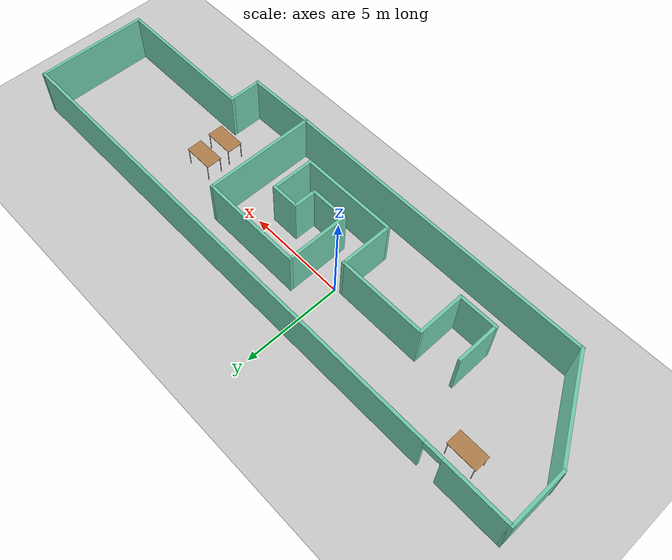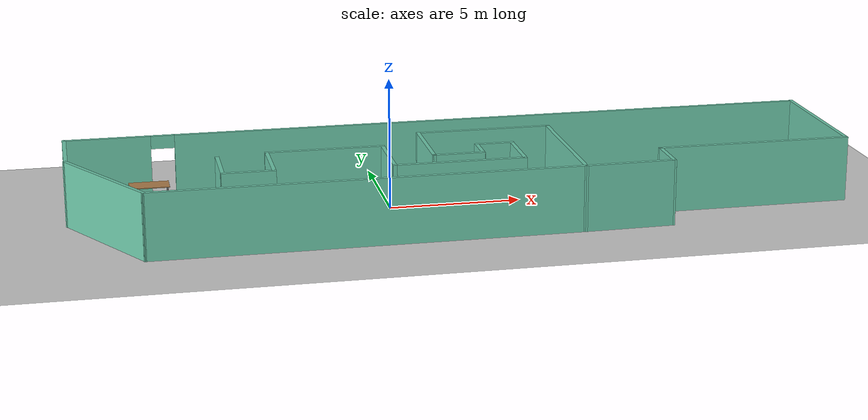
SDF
<sdf version="1.6">
 <world name="default">
  <light name="sun" type="directional">
   <pose>0 0 10 0 -0 0</pose>
   <diffuse>0.8 0.8 0.8 1</diffuse>
   <specular>0.2 0.2 0.2 1</specular>
   <attenuation>
    <range>1000</range>
    <constant>0.9</constant>
    <linear>0.01</linear>
    <quadratic>0.001</quadratic>
   </attenuation>
   <direction>-0.5 0.1 -0.9</direction>
  </light>
  <model name="ground_plane">
   <static>1</static>
   <link name="link">
    <collision name="collision">
     <geometry><plane><normal>0 0 1</normal><size>100 100</size></plane></geometry>
     <surface>
      <contact><collide_bitmask>65535</collide_bitmask></contact>
      <friction><ode><mu>100</mu><mu2>50</mu2></ode></friction>
     </surface>
    </collision>
    <visual name="visual">
     <cast_shadows>0</cast_shadows>
     <geometry><plane><normal>0 0 1</normal><size>100 100</size></plane></geometry>
     <material>
      <script><uri>file://media/materials/scripts/gazebo.material</uri><name>Gazebo/Grey</name></script>
     </material>
    </visual>
   </link>
  </model>
  <gravity>0 0 -9.8</gravity>
  <magnetic_field>6e-06 2.3e-05 -4.2e-05</magnetic_field>
  <atmosphere type="adiabatic"/>
  <physics name="default_physics" default="0" type="ode">
   <max_step_size>0.001</max_step_size>
   <real_time_factor>1</real_time_factor>
   <real_time_update_rate>1000</real_time_update_rate>
  </physics>
  <scene><ambient>0.4 0.4 0.4 1</ambient><background>0.7 0.7 0.7 1</background><shadows>1</shadows></scene>
  <spherical_coordinates>
   <surface_model>EARTH_WGS84</surface_model>
   <latitude_deg>0</latitude_deg>
   <longitude_deg>0</longitude_deg>
   <elevation>0</elevation>
   <heading_deg>0</heading_deg>
  </spherical_coordinates>
  <model name="home2">
   <pose>2.58786 -0.613583 0 0 -0 0</pose>
   <link name="Wall_0">
    <collision name="Wall_0_Collision">
     <geometry><box><size>16 0.15 2.5</size></box></geometry>
     <pose>0 0 1.25 0 -0 0</pose>
    </collision>
    <visual name="Wall_0_Visual">
     <pose>0 0 1.25 0 -0 0</pose>
     <geometry><box><size>16 0.15 2.5</size></box></geometry>
     <material>
      <script><uri>file://media/materials/scripts/gazebo.material</uri><name>Gazebo/Grey</name></script>
      <ambient>0.435294 0.796078 0.67451 1</ambient>
     </material>
     <meta><layer>0</layer></meta>
    </visual>
    <pose>-4.06127 -3.61964 0 0 -0 3.14159</pose>
   </link>
   <link name="Wall_1">
    <collision name="Wall_1_Collision">
     <geometry><box><size>5.25 0.15 2.5</size></box></geometry>
     <pose>0 0 1.25 0 -0 0</pose>
    </collision>
    <visual name="Wall_1_Visual">
     <pose>0 0 1.25 0 -0 0</pose>
     <geometry><box><size>5.25 0.15 2.5</size></box></geometry>
     <material>
      <script><uri>file://media/materials/scripts/gazebo.material</uri><name>Gazebo/Grey</name></script>
      <ambient>0.435294 0.796078 0.67451 1</ambient>
     </material>
     <meta><layer>0</layer></meta>
    </visual>
    <pose>-13.2613 -1.41127 0 0 -0 2.0944</pose>
   </link>
   <link name="Wall_10">
    <collision name="Wall_10_Collision">
     <geometry><box><size>3.25 0.15 2.5</size></box></geometry>
     <pose>0 0 1.25 0 -0 0</pose>
    </collision>
    <visual name="Wall_10_Visual">
     <pose>0 0 1.25 0 -0 0</pose>
     <geometry><box><size>3.25 0.15 2.5</size></box></geometry>
     <material>
      <script><uri>file://media/materials/scripts/gazebo.material</uri><name>Gazebo/Grey</name></script>
      <ambient>0.435294 0.796078 0.67451 1</ambient>
     </material>
     <meta><layer>0</layer></meta>
    </visual>
    <pose>-1.23627 0.430361 0 0 0 -1.5708</pose>
   </link>
   <link name="Wall_11">
    <collision name="Wall_11_Collision">
     <geometry><box><size>2 0.15 2.5</size></box></geometry>
     <pose>0 0 1.25 0 -0 0</pose>
    </collision>
    <visual name="Wall_11_Visual">
     <pose>0 0 1.25 0 -0 0</pose>
     <geometry><box><size>2 0.15 2.5</size></box></geometry>
     <material>
      <script><uri>file://media/materials/scripts/gazebo.material</uri><name>Gazebo/Grey</name></script>
      <ambient>0.435294 0.796078 0.67451 1</ambient>
     </material>
     <meta><layer>0</layer></meta>
    </visual>
    <pose>-0.311274 -1.11964 0 0 -0 0</pose>
   </link>
   <link name="Wall_12">
    <collision name="Wall_12_Collision">
     <geometry><box><size>1.25 0.15 2.5</size></box></geometry>
     <pose>0 0 1.25 0 -0 0</pose>
    </collision>
    <visual name="Wall_12_Visual">
     <pose>0 0 1.25 0 -0 0</pose>
     <geometry><box><size>1.25 0.15 2.5</size></box></geometry>
     <material>
      <script><uri>file://media/materials/scripts/gazebo.material</uri><name>Gazebo/Grey</name></script>
      <ambient>0.435294 0.796078 0.67451 1</ambient>
     </material>
     <meta><layer>0</layer></meta>
    </visual>
    <pose>0.613726 -0.569639 0 0 -0 1.5708</pose>
   </link>
   <link name="Wall_13">
    <collision name="Wall_13_Collision">
     <geometry><box><size>1.5 0.15 2.5</size></box></geometry>
     <pose>0 0 1.25 0 -0 0</pose>
    </collision>
    <visual name="Wall_13_Visual">
     <pose>0 0 1.25 0 -0 0</pose>
     <geometry><box><size>1.5 0.15 2.5</size></box></geometry>
     <material>
      <script><uri>file://media/materials/scripts/gazebo.material</uri><name>Gazebo/Grey</name></script>
      <ambient>0.435294 0.796078 0.67451 1</ambient>
     </material>
     <meta><layer>0</layer></meta>
    </visual>
    <pose>1.28873 -0.019639 0 0 -0 0</pose>
   </link>
   <link name="Wall_14">
    <collision name="Wall_14_Collision">
     <geometry><box><size>2.25 0.15 2.5</size></box></geometry>
     <pose>0 0 1.25 0 -0 0</pose>
    </collision>
    <visual name="Wall_14_Visual">
     <pose>0 0 1.25 0 -0 0</pose>
     <geometry><box><size>2.25 0.15 2.5</size></box></geometry>
     <material>
      <script><uri>file://media/materials/scripts/gazebo.material</uri><name>Gazebo/Grey</name></script>
      <ambient>0.435294 0.796078 0.67451 1</ambient>
     </material>
     <meta><layer>0</layer></meta>
    </visual>
    <pose>1.96373 -1.06964 0 0 0 -1.5708</pose>
   </link>
   <link name="Wall_15">
    <collision name="Wall_15_Collision">
     <geometry><box><size>5 0.15 2.5</size></box></geometry>
     <pose>0 0 1.25 0 -0 0</pose>
    </collision>
    <visual name="Wall_15_Visual">
     <pose>0 0 1.25 0 -0 0</pose>
     <geometry><box><size>5 0.15 2.5</size></box></geometry>
     <material>
      <script><uri>file://media/materials/scripts/gazebo.material</uri><name>Gazebo/Grey</name></script>
      <ambient>0.435294 0.796078 0.67451 1</ambient>
     </material>
     <meta><layer>0</layer></meta>
    </visual>
    <pose>-0.461274 -2.11964 0 0 -0 3.14159</pose>
   </link>
   <link name="Wall_16">
    <collision name="Wall_16_Collision">
     <geometry><box><size>2.75 0.15 2.5</size></box></geometry>
     <pose>0 0 1.25 0 -0 0</pose>
    </collision>
    <visual name="Wall_16_Visual">
     <pose>0 0 1.25 0 -0 0</pose>
     <geometry><box><size>2.75 0.15 2.5</size></box></geometry>
     <material>
      <script><uri>file://media/materials/scripts/gazebo.material</uri><name>Gazebo/Grey</name></script>
      <ambient>0.435294 0.796078 0.67451 1</ambient>
     </material>
     <meta><layer>0</layer></meta>
    </visual>
    <pose>-2.88627 -0.819639 0 0 -0 1.5708</pose>
   </link>
   <link name="Wall_17">
    <collision name="Wall_17_Collision">
     <geometry><box><size>4.5 0.15 2.5</size></box></geometry>
     <pose>0 0 1.25 0 -0 0</pose>
    </collision>
    <visual name="Wall_17_Visual">
     <pose>0 0 1.25 0 -0 0</pose>
     <geometry><box><size>4.5 0.15 2.5</size></box></geometry>
     <material>
      <script><uri>file://media/materials/scripts/gazebo.material</uri><name>Gazebo/Grey</name></script>
      <ambient>0.435294 0.796078 0.67451 1</ambient>
     </material>
     <meta><layer>0</layer></meta>
    </visual>
    <pose>-5.06127 0.480361 0 0 -0 3.14159</pose>
   </link>
   <link name="Wall_18">
    <collision name="Wall_18_Collision">
     <geometry><box><size>2.5 0.15 2.5</size></box></geometry>
     <pose>0 0 1.25 0 -0 0</pose>
    </collision>
    <visual name="Wall_18_Visual">
     <pose>0 0 1.25 0 -0 0</pose>
     <geometry><box><size>2.5 0.15 2.5</size></box></geometry>
     <material>
      <script><uri>file://media/materials/scripts/gazebo.material</uri><name>Gazebo/Grey</name></script>
      <ambient>0.435294 0.796078 0.67451 1</ambient>
     </material>
     <meta><layer>0</layer></meta>
    </visual>
    <pose>-7.23627 -0.694639 0 0 0 -1.5708</pose>
   </link>
   <link name="Wall_19">
    <collision name="Wall_19_Collision">
     <geometry><box><size>2 0.15 2.5</size></box></geometry>
     <pose>0 0 1.25 0 -0 0</pose>
    </collision>
    <visual name="Wall_19_Visual">
     <pose>0 0 1.25 0 -0 0</pose>
     <geometry><box><size>2 0.15 2.5</size></box></geometry>
     <material>
      <script><uri>file://media/materials/scripts/gazebo.material</uri><name>Gazebo/Grey</name></script>
      <ambient>0.435294 0.796078 0.67451 1</ambient>
     </material>
     <meta><layer>0</layer></meta>
    </visual>
    <pose>-8.16127 -1.86964 0 0 -0 3.14159</pose>
   </link>
   <link name="Wall_2">
    <collision name="Wall_2_Collision">
     <geometry><box><size>3 0.15 2.5</size></box></geometry>
     <pose>0 0 1.25 0 -0 0</pose>
    </collision>
    <visual name="Wall_2_Visual">
     <pose>0 0 1.25 0 -0 0</pose>
     <geometry><box><size>3 0.15 2.5</size></box></geometry>
     <material>
      <script><uri>file://media/materials/scripts/gazebo.material</uri><name>Gazebo/Grey</name></script>
      <ambient>0.435294 0.796078 0.67451 1</ambient>
     </material>
     <meta><layer>0</layer></meta>
    </visual>
    <pose>-14.5363 2.22209 0 0 -0 1.5708</pose>
   </link>
   <link name="Wall_20">
    <collision name="Wall_20_Collision">
     <geometry><box><size>2.25 0.15 2.5</size></box></geometry>
     <pose>0 0 1.25 0 -0 0</pose>
    </collision>
    <visual name="Wall_20_Visual">
     <pose>0 0 1.25 0 -0 0</pose>
     <geometry><box><size>2.25 0.15 2.5</size></box></geometry>
     <material>
      <script><uri>file://media/materials/scripts/gazebo.material</uri><name>Gazebo/Grey</name></script>
      <ambient>0.435294 0.796078 0.67451 1</ambient>
     </material>
     <meta><layer>0</layer></meta>
    </visual>
    <pose>-9.08627 -0.819639 0 0 -0 1.5708</pose>
   </link>
   <link name="Wall_3">
    <pose>0.013726 3.64709 0 0 -0 0</pose>
    <visual name="Wall_3_Visual_0">
     <pose>-12.9695 0 1.25 0 -0 0</pose>
     <geometry><box><size>3.3111 0.15 2.5</size></box></geometry>
     <material>
      <script><uri>file://media/materials/scripts/gazebo.material</uri><name>Gazebo/Grey</name></script>
      <ambient>0.435294 0.796078 0.67451 1</ambient>
     </material>
     <meta><layer>0</layer></meta>
    </visual>
    <collision name="Wall_3_Collision_0">
     <geometry><box><size>3.3111 0.15 2.5</size></box></geometry>
     <pose>-12.9695 0 1.25 0 -0 0</pose>
    </collision>
    <visual name="Wall_3_Visual_1">
     <pose>2.10555 0 1.25 0 -0 0</pose>
     <geometry><box><size>25.0389 0.15 2.5</size></box></geometry>
     <material>
      <script><uri>file://media/materials/scripts/gazebo.material</uri><name>Gazebo/Grey</name></script>
      <ambient>0.435294 0.796078 0.67451 1</ambient>
     </material>
     <meta><layer>0</layer></meta>
    </visual>
    <collision name="Wall_3_Collision_1">
     <geometry><box><size>25.0389 0.15 2.5</size></box></geometry>
     <pose>2.10555 0 1.25 0 -0 0</pose>
    </collision>
    <visual name="Wall_3_Visual_2">
     <pose>-10.8639 0 2.25 0 -0 0</pose>
     <geometry><box><size>0.9 0.15 0.5</size></box></geometry>
     <material>
      <script><uri>file://media/materials/scripts/gazebo.material</uri><name>Gazebo/Grey</name></script>
      <ambient>0.435294 0.796078 0.67451 1</ambient>
     </material>
     <meta><layer>0</layer></meta>
    </visual>
    <collision name="Wall_3_Collision_2">
     <geometry><box><size>0.9 0.15 0.5</size></box></geometry>
     <pose>-10.8639 0 2.25 0 -0 0</pose>
    </collision>
   </link>
   <link name="Wall_4">
    <collision name="Wall_4_Collision">
     <geometry><box><size>5.75 0.15 2.5</size></box></geometry>
     <pose>0 0 1.25 0 -0 0</pose>
    </collision>
    <visual name="Wall_4_Visual">
     <pose>0 0 1.25 0 -0 0</pose>
     <geometry><box><size>5.75 0.15 2.5</size></box></geometry>
     <material>
      <script><uri>file://media/materials/scripts/gazebo.material</uri><name>Gazebo/Grey</name></script>
      <ambient>0.435294 0.796078 0.67451 1</ambient>
     </material>
     <meta><layer>0</layer></meta>
    </visual>
    <pose>14.5637 0.847091 0 0 0 -1.5708</pose>
   </link>
   <link name="Wall_5">
    <collision name="Wall_5_Collision">
     <geometry><box><size>7.5 0.15 2.5</size></box></geometry>
     <pose>0 0 1.25 0 -0 0</pose>
    </collision>
    <visual name="Wall_5_Visual">
     <pose>0 0 1.25 0 -0 0</pose>
     <geometry><box><size>7.5 0.15 2.5</size></box></geometry>
     <material>
      <script><uri>file://media/materials/scripts/gazebo.material</uri><name>Gazebo/Grey</name></script>
      <ambient>0.435294 0.796078 0.67451 1</ambient>
     </material>
     <meta><layer>0</layer></meta>
    </visual>
    <pose>10.8887 -1.95291 0 0 -0 3.14159</pose>
   </link>
   <link name="Wall_6">
    <collision name="Wall_6_Collision">
     <geometry><box><size>1.75 0.15 2.5</size></box></geometry>
     <pose>0 0 1.25 0 -0 0</pose>
    </collision>
    <visual name="Wall_6_Visual">
     <pose>0 0 1.25 0 -0 0</pose>
     <geometry><box><size>1.75 0.15 2.5</size></box></geometry>
     <material>
      <script><uri>file://media/materials/scripts/gazebo.material</uri><name>Gazebo/Grey</name></script>
      <ambient>0.435294 0.796078 0.67451 1</ambient>
     </material>
     <meta><layer>0</layer></meta>
    </visual>
    <pose>7.21373 -2.75291 0 0 0 -1.5708</pose>
   </link>
   <link name="Wall_7">
    <collision name="Wall_7_Collision">
     <geometry><box><size>3.50067 0.15 2.5</size></box></geometry>
     <pose>0 0 1.25 0 -0 0</pose>
    </collision>
    <visual name="Wall_7_Visual">
     <pose>0 0 1.25 0 -0 0</pose>
     <geometry><box><size>3.50067 0.15 2.5</size></box></geometry>
     <material>
      <script><uri>file://media/materials/scripts/gazebo.material</uri><name>Gazebo/Grey</name></script>
      <ambient>0.435294 0.796078 0.67451 1</ambient>
     </material>
     <meta><layer>0</layer></meta>
    </visual>
    <pose>5.53873 -3.58627 0 0 0 -3.12168</pose>
   </link>
   <link name="Wall_8">
    <collision name="Wall_8_Collision">
     <geometry><box><size>5.75 0.15 2.5</size></box></geometry>
     <pose>0 0 1.25 0 -0 0</pose>
    </collision>
    <visual name="Wall_8_Visual">
     <pose>0 0 1.25 0 -0 0</pose>
     <geometry><box><size>5.75 0.15 2.5</size></box></geometry>
     <material>
      <script><uri>file://media/materials/scripts/gazebo.material</uri><name>Gazebo/Grey</name></script>
      <ambient>0.435294 0.796078 0.67451 1</ambient>
     </material>
     <meta><layer>0</layer></meta>
    </visual>
    <pose>3.86373 -0.819639 0 0 -0 1.5708</pose>
   </link>
   <link name="Wall_9">
    <collision name="Wall_9_Collision">
     <geometry><box><size>5.25 0.15 2.5</size></box></geometry>
     <pose>0 0 1.25 0 -0 0</pose>
    </collision>
    <visual name="Wall_9_Visual">
     <pose>0 0 1.25 0 -0 0</pose>
     <geometry><box><size>5.25 0.15 2.5</size></box></geometry>
     <material>
      <script><uri>file://media/materials/scripts/gazebo.material</uri><name>Gazebo/Grey</name></script>
      <ambient>0.435294 0.796078 0.67451 1</ambient>
     </material>
     <meta><layer>0</layer></meta>
    </visual>
    <pose>1.31373 1.98036 0 0 -0 3.14159</pose>
   </link>
   <static>1</static>
  </model>
  <model name="table">
   <static>1</static>
   <link name="link">
    <collision name="surface">
     <pose>0 0 1 0 -0 0</pose>
     <geometry><box><size>1.5 0.8 0.03</size></box></geometry>
     <surface><friction><ode><mu>0.6</mu><mu2>0.6</mu2></ode></friction></surface>
    </collision>
    <visual name="visual1">
     <pose>0 0 1 0 -0 0</pose>
     <geometry><box><size>1.5 0.8 0.03</size></box></geometry>
     <material>
      <script><uri>file://media/materials/scripts/gazebo.material</uri><name>Gazebo/Wood</name></script>
     </material>
    </visual>
    <collision name="front_left_leg">
     <pose>0.68 0.38 0.5 0 -0 0</pose>
     <geometry><cylinder><radius>0.02</radius><length>1</length></cylinder></geometry>
    </collision>
    <visual name="front_left_leg">
     <pose>0.68 0.38 0.5 0 -0 0</pose>
     <geometry><cylinder><radius>0.02</radius><length>1</length></cylinder></geometry>
     <material>
      <script><uri>file://media/materials/scripts/gazebo.material</uri><name>Gazebo/Grey</name></script>
     </material>
    </visual>
    <collision name="front_right_leg">
     <pose>0.68 -0.38 0.5 0 -0 0</pose>
     <geometry><cylinder><radius>0.02</radius><length>1</length></cylinder></geometry>
    </collision>
    <visual name="front_right_leg">
     <pose>0.68 -0.38 0.5 0 -0 0</pose>
     <geometry><cylinder><radius>0.02</radius><length>1</length></cylinder></geometry>
     <material>
      <script><uri>file://media/materials/scripts/gazebo.material</uri><name>Gazebo/Grey</name></script>
     </material>
    </visual>
    <collision name="back_right_leg">
     <pose>-0.68 -0.38 0.5 0 -0 0</pose>
     <geometry><cylinder><radius>0.02</radius><length>1</length></cylinder></geometry>
    </collision>
    <visual name="back_right_leg">
     <pose>-0.68 -0.38 0.5 0 -0 0</pose>
     <geometry><cylinder><radius>0.02</radius><length>1</length></cylinder></geometry>
     <material>
      <script><uri>file://media/materials/scripts/gazebo.material</uri><name>Gazebo/Grey</name></script>
     </material>
    </visual>
    <collision name="back_left_leg">
     <pose>-0.68 0.38 0.5 0 -0 0</pose>
     <geometry><cylinder><radius>0.02</radius><length>1</length></cylinder></geometry>
    </collision>
    <visual name="back_left_leg">
     <pose>-0.68 0.38 0.5 0 -0 0</pose>
     <geometry><cylinder><radius>0.02</radius><length>1</length></cylinder></geometry>
     <material>
      <script><uri>file://media/materials/scripts/gazebo.material</uri><name>Gazebo/Grey</name></script>
     </material>
    </visual>
   </link>
   <pose>9.18334 -1.47754 0 0 -0 0</pose>
  </model>
  <model name="table_0">
   <static>1</static>
   <link name="link">
    <collision name="surface">
     <pose>0 0 1 0 -0 0</pose>
     <geometry><box><size>1.5 0.8 0.03</size></box></geometry>
     <surface><friction><ode><mu>0.6</mu><mu2>0.6</mu2></ode></friction></surface>
    </collision>
    <visual name="visual1">
     <pose>0 0 1 0 -0 0</pose>
     <geometry><box><size>1.5 0.8 0.03</size></box></geometry>
     <material>
      <script><uri>file://media/materials/scripts/gazebo.material</uri><name>Gazebo/Wood</name></script>
     </material>
    </visual>
    <collision name="front_left_leg">
     <pose>0.68 0.38 0.5 0 -0 0</pose>
     <geometry><cylinder><radius>0.02</radius><length>1</length></cylinder></geometry>
    </collision>
    <visual name="front_left_leg">
     <pose>0.68 0.38 0.5 0 -0 0</pose>
     <geometry><cylinder><radius>0.02</radius><length>1</length></cylinder></geometry>
     <material>
      <script><uri>file://media/materials/scripts/gazebo.material</uri><name>Gazebo/Grey</name></script>
     </material>
    </visual>
    <collision name="front_right_leg">
     <pose>0.68 -0.38 0.5 0 -0 0</pose>
     <geometry><cylinder><radius>0.02</radius><length>1</length></cylinder></geometry>
    </collision>
    <visual name="front_right_leg">
     <pose>0.68 -0.38 0.5 0 -0 0</pose>
     <geometry><cylinder><radius>0.02</radius><length>1</length></cylinder></geometry>
     <material>
      <script><uri>file://media/materials/scripts/gazebo.material</uri><name>Gazebo/Grey</name></script>
     </material>
    </visual>
    <collision name="back_right_leg">
     <pose>-0.68 -0.38 0.5 0 -0 0</pose>
     <geometry><cylinder><radius>0.02</radius><length>1</length></cylinder></geometry>
    </collision>
    <visual name="back_right_leg">
     <pose>-0.68 -0.38 0.5 0 -0 0</pose>
     <geometry><cylinder><radius>0.02</radius><length>1</length></cylinder></geometry>
     <material>
      <script><uri>file://media/materials/scripts/gazebo.material</uri><name>Gazebo/Grey</name></script>
     </material>
    </visual>
    <collision name="back_left_leg">
     <pose>-0.68 0.38 0.5 0 -0 0</pose>
     <geometry><cylinder><radius>0.02</radius><length>1</length></cylinder></geometry>
    </collision>
    <visual name="back_left_leg">
     <pose>-0.68 0.38 0.5 0 -0 0</pose>
     <geometry><cylinder><radius>0.02</radius><length>1</length></cylinder></geometry>
     <material>
      <script><uri>file://media/materials/scripts/gazebo.material</uri><name>Gazebo/Grey</name></script>
     </material>
    </visual>
   </link>
   <pose>9.13519 -0.177758 0 0 -0 0</pose>
  </model>
  <model name="table_1">
   <static>1</static>
   <link name="link">
    <collision name="surface">
     <pose>0 0 1 0 -0 0</pose>
     <geometry><box><size>1.5 0.8 0.03</size></box></geometry>
     <surface><friction><ode><mu>0.6</mu><mu2>0.6</mu2></ode></friction></surface>
    </collision>
    <visual name="visual1">
     <pose>0 0 1 0 -0 0</pose>
     <geometry><box><size>1.5 0.8 0.03</size></box></geometry>
     <material>
      <script><uri>file://media/materials/scripts/gazebo.material</uri><name>Gazebo/Wood</name></script>
     </material>
    </visual>
    <collision name="front_left_leg">
     <pose>0.68 0.38 0.5 0 -0 0</pose>
     <geometry><cylinder><radius>0.02</radius><length>1</length></cylinder></geometry>
    </collision>
    <visual name="front_left_leg">
     <pose>0.68 0.38 0.5 0 -0 0</pose>
     <geometry><cylinder><radius>0.02</radius><length>1</length></cylinder></geometry>
     <material>
      <script><uri>file://media/materials/scripts/gazebo.material</uri><name>Gazebo/Grey</name></script>
     </material>
    </visual>
    <collision name="front_right_leg">
     <pose>0.68 -0.38 0.5 0 -0 0</pose>
     <geometry><cylinder><radius>0.02</radius><length>1</length></cylinder></geometry>
    </collision>
    <visual name="front_right_leg">
     <pose>0.68 -0.38 0.5 0 -0 0</pose>
     <geometry><cylinder><radius>0.02</radius><length>1</length></cylinder></geometry>
     <material>
      <script><uri>file://media/materials/scripts/gazebo.material</uri><name>Gazebo/Grey</name></script>
     </material>
    </visual>
    <collision name="back_right_leg">
     <pose>-0.68 -0.38 0.5 0 -0 0</pose>
     <geometry><cylinder><radius>0.02</radius><length>1</length></cylinder></geometry>
    </collision>
    <visual name="back_right_leg">
     <pose>-0.68 -0.38 0.5 0 -0 0</pose>
     <geometry><cylinder><radius>0.02</radius><length>1</length></cylinder></geometry>
     <material>
      <script><uri>file://media/materials/scripts/gazebo.material</uri><name>Gazebo/Grey</name></script>
     </material>
    </visual>
    <collision name="back_left_leg">
     <pose>-0.68 0.38 0.5 0 -0 0</pose>
     <geometry><cylinder><radius>0.02</radius><length>1</length></cylinder></geometry>
    </collision>
    <visual name="back_left_leg">
     <pose>-0.68 0.38 0.5 0 -0 0</pose>
     <geometry><cylinder><radius>0.02</radius><length>1</length></cylinder></geometry>
     <material>
      <script><uri>file://media/materials/scripts/gazebo.material</uri><name>Gazebo/Grey</name></script>
     </material>
    </visual>
   </link>
   <pose>-8.90757 1.55268 0 0 -0 0</pose>
  </model>
 </world>
</sdf>
